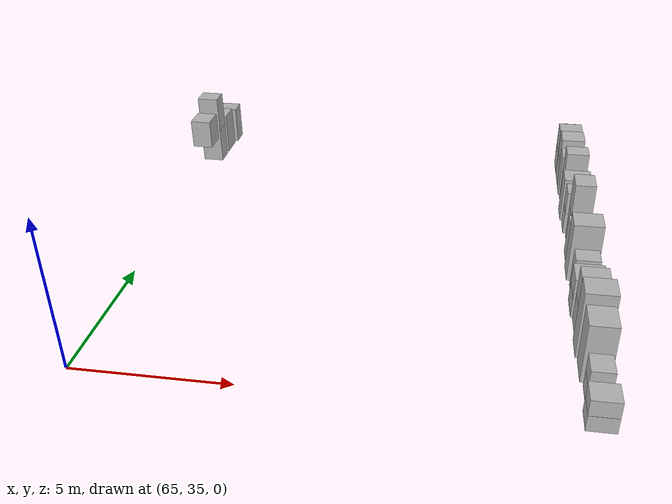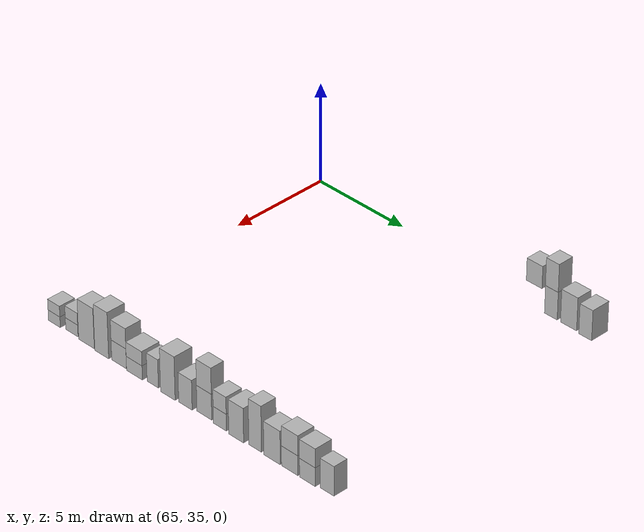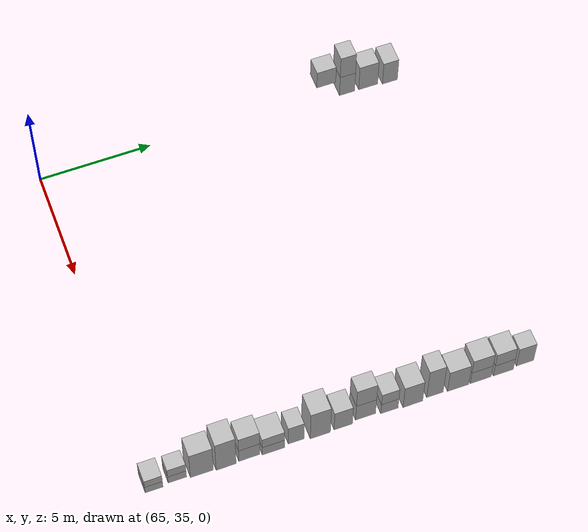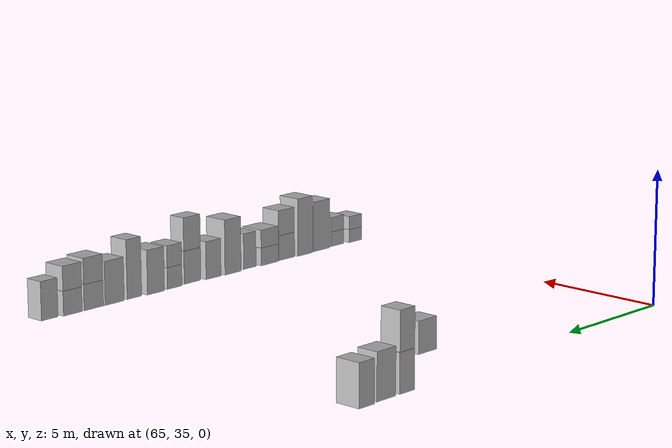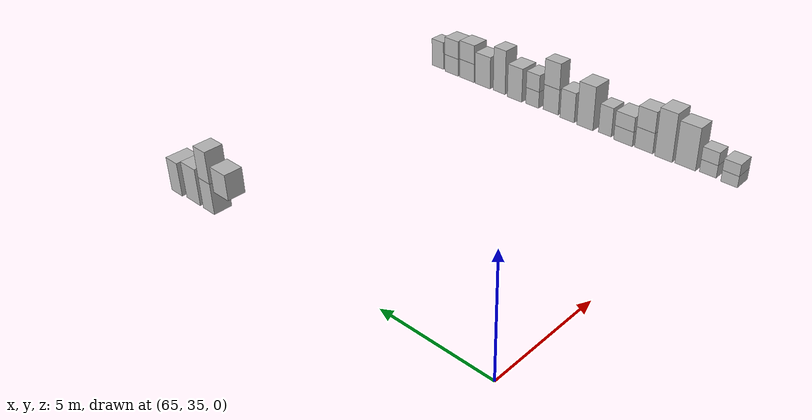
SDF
<sdf version="1.5">
 <world name="default">
  <model name="ground_plane">
   <static>true</static>
   <link name="link">
    <collision name="collision">
     <geometry><plane><normal>0 0 1</normal><size>250 250</size></plane></geometry>
     <surface><friction><ode><mu>1</mu><mu2>1</mu2></ode></friction></surface>
    </collision>
    <visual name="grass">
     <cast_shadows>false</cast_shadows>
     <geometry><mesh><uri>file://grass_plane/meshes/grass_plane.dae</uri></mesh></geometry>
    </visual>
   </link>
  </model>
  <model name="Cardboard_box_top_758">
   <link name="link_0">
    <pose>65 48 1.11567631458 0 0 0</pose>
    <inertial>
     <mass>1</mass>
     <inertia>
      <ixx>0.166667</ixx>
      <ixy>0</ixy>
      <ixz>0</ixz>
      <iyy>0.166667</iyy>
      <iyz>0</iyz>
      <izz>0.166667</izz>
     </inertia>
    </inertial>
    <collision name="collision">
     <geometry>
      <mesh>
       <uri>model://Cardboard_box/meshes/cardboard_box.dae</uri>
       <scale>1.96611906747 2.23167727122 2.78919078645</scale>
      </mesh>
     </geometry>
    </collision>
    <visual name="visual">
     <geometry>
      <mesh>
       <uri>model://Cardboard_box/meshes/cardboard_box.dae</uri>
       <scale>1.96611906747 2.23167727122 2.78919078645</scale>
      </mesh>
     </geometry>
    </visual>
   </link>
   <static>1</static>
  </model>
  <model name="Cardboard_box_759">
   <link name="link_0">
    <pose>65 49 0 0 0 0</pose>
    <inertial>
     <mass>1</mass>
     <inertia>
      <ixx>0.166667</ixx>
      <ixy>0</ixy>
      <ixz>0</ixz>
      <iyy>0.166667</iyy>
      <iyz>0</iyz>
      <izz>0.166667</izz>
     </inertia>
    </inertial>
    <collision name="collision">
     <geometry>
      <mesh>
       <uri>model://Cardboard_box/meshes/cardboard_box.dae</uri>
       <scale>2.03705187288 1.803535053 3.47696320242</scale>
      </mesh>
     </geometry>
    </collision>
    <visual name="visual">
     <geometry>
      <mesh>
       <uri>model://Cardboard_box/meshes/cardboard_box.dae</uri>
       <scale>2.03705187288 1.803535053 3.47696320242</scale>
      </mesh>
     </geometry>
    </visual>
   </link>
   <static>1</static>
  </model>
  <model name="Cardboard_box_top_759">
   <link name="link_0">
    <pose>65 49 1.39078528097 0 0 0</pose>
    <inertial>
     <mass>1</mass>
     <inertia>
      <ixx>0.166667</ixx>
      <ixy>0</ixy>
      <ixz>0</ixz>
      <iyy>0.166667</iyy>
      <iyz>0</iyz>
      <izz>0.166667</izz>
     </inertia>
    </inertial>
    <collision name="collision">
     <geometry>
      <mesh>
       <uri>model://Cardboard_box/meshes/cardboard_box.dae</uri>
       <scale>2.03705187288 1.803535053 3.47696320242</scale>
      </mesh>
     </geometry>
    </collision>
    <visual name="visual">
     <geometry>
      <mesh>
       <uri>model://Cardboard_box/meshes/cardboard_box.dae</uri>
       <scale>2.03705187288 1.803535053 3.47696320242</scale>
      </mesh>
     </geometry>
    </visual>
   </link>
   <static>1</static>
  </model>
  <model name="Cardboard_box_760">
   <link name="link_0">
    <pose>65 50 0 0 0 0</pose>
    <inertial>
     <mass>1</mass>
     <inertia>
      <ixx>0.166667</ixx>
      <ixy>0</ixy>
      <ixz>0</ixz>
      <iyy>0.166667</iyy>
      <iyz>0</iyz>
      <izz>0.166667</izz>
     </inertia>
    </inertial>
    <collision name="collision">
     <geometry>
      <mesh>
       <uri>model://Cardboard_box/meshes/cardboard_box.dae</uri>
       <scale>2.05504429465 2.26245942299 4.13785583534</scale>
      </mesh>
     </geometry>
    </collision>
    <visual name="visual">
     <geometry>
      <mesh>
       <uri>model://Cardboard_box/meshes/cardboard_box.dae</uri>
       <scale>2.05504429465 2.26245942299 4.13785583534</scale>
      </mesh>
     </geometry>
    </visual>
   </link>
   <static>1</static>
  </model>
  <model name="Cardboard_box_761">
   <link name="link_0">
    <pose>65 51 0 0 0 0</pose>
    <inertial>
     <mass>1</mass>
     <inertia>
      <ixx>0.166667</ixx>
      <ixy>0</ixy>
      <ixz>0</ixz>
      <iyy>0.166667</iyy>
      <iyz>0</iyz>
      <izz>0.166667</izz>
     </inertia>
    </inertial>
    <collision name="collision">
     <geometry>
      <mesh>
       <uri>model://Cardboard_box/meshes/cardboard_box.dae</uri>
       <scale>2.45562079697 1.79561571463 3.78028953093</scale>
      </mesh>
     </geometry>
    </collision>
    <visual name="visual">
     <geometry>
      <mesh>
       <uri>model://Cardboard_box/meshes/cardboard_box.dae</uri>
       <scale>2.45562079697 1.79561571463 3.78028953093</scale>
      </mesh>
     </geometry>
    </visual>
   </link>
   <static>1</static>
  </model>
  <model name="Cardboard_box_762">
   <link name="link_0">
    <pose>80 35 0 0 0 0</pose>
    <inertial>
     <mass>1</mass>
     <inertia>
      <ixx>0.166667</ixx>
      <ixy>0</ixy>
      <ixz>0</ixz>
      <iyy>0.166667</iyy>
      <iyz>0</iyz>
      <izz>0.166667</izz>
     </inertia>
    </inertial>
    <collision name="collision">
     <geometry>
      <mesh>
       <uri>model://Cardboard_box/meshes/cardboard_box.dae</uri>
       <scale>2.12002066274 1.8677851871 1.33983689175</scale>
      </mesh>
     </geometry>
    </collision>
    <visual name="visual">
     <geometry>
      <mesh>
       <uri>model://Cardboard_box/meshes/cardboard_box.dae</uri>
       <scale>2.12002066274 1.8677851871 1.33983689175</scale>
      </mesh>
     </geometry>
    </visual>
   </link>
   <static>1</static>
  </model>
  <model name="Cardboard_box_top_762">
   <link name="link_0">
    <pose>80 35 0.535934756702 0 0 0</pose>
    <inertial>
     <mass>1</mass>
     <inertia>
      <ixx>0.166667</ixx>
      <ixy>0</ixy>
      <ixz>0</ixz>
      <iyy>0.166667</iyy>
      <iyz>0</iyz>
      <izz>0.166667</izz>
     </inertia>
    </inertial>
    <collision name="collision">
     <geometry>
      <mesh>
       <uri>model://Cardboard_box/meshes/cardboard_box.dae</uri>
       <scale>2.12002066274 1.8677851871 1.33983689175</scale>
      </mesh>
     </geometry>
    </collision>
    <visual name="visual">
     <geometry>
      <mesh>
       <uri>model://Cardboard_box/meshes/cardboard_box.dae</uri>
       <scale>2.12002066274 1.8677851871 1.33983689175</scale>
      </mesh>
     </geometry>
    </visual>
   </link>
   <static>1</static>
  </model>
  <model name="Cardboard_box_763">
   <link name="link_0">
    <pose>80 36 0 0 0 0</pose>
    <inertial>
     <mass>1</mass>
     <inertia>
      <ixx>0.166667</ixx>
      <ixy>0</ixy>
      <ixz>0</ixz>
      <iyy>0.166667</iyy>
      <iyz>0</iyz>
      <izz>0.166667</izz>
     </inertia>
    </inertial>
    <collision name="collision">
     <geometry>
      <mesh>
       <uri>model://Cardboard_box/meshes/cardboard_box.dae</uri>
       <scale>1.70291779829 1.93341043569 1.48772502058</scale>
      </mesh>
     </geometry>
    </collision>
    <visual name="visual">
     <geometry>
      <mesh>
       <uri>model://Cardboard_box/meshes/cardboard_box.dae</uri>
       <scale>1.70291779829 1.93341043569 1.48772502058</scale>
      </mesh>
     </geometry>
    </visual>
   </link>
   <static>1</static>
  </model>
  <model name="Cardboard_box_top_763">
   <link name="link_0">
    <pose>80 36 0.595090008233 0 0 0</pose>
    <inertial>
     <mass>1</mass>
     <inertia>
      <ixx>0.166667</ixx>
      <ixy>0</ixy>
      <ixz>0</ixz>
      <iyy>0.166667</iyy>
      <iyz>0</iyz>
      <izz>0.166667</izz>
     </inertia>
    </inertial>
    <collision name="collision">
     <geometry>
      <mesh>
       <uri>model://Cardboard_box/meshes/cardboard_box.dae</uri>
       <scale>1.70291779829 1.93341043569 1.48772502058</scale>
      </mesh>
     </geometry>
    </collision>
    <visual name="visual">
     <geometry>
      <mesh>
       <uri>model://Cardboard_box/meshes/cardboard_box.dae</uri>
       <scale>1.70291779829 1.93341043569 1.48772502058</scale>
      </mesh>
     </geometry>
    </visual>
   </link>
   <static>1</static>
  </model>
  <model name="Cardboard_box_764">
   <link name="link_0">
    <pose>80 37 0 0 0 0</pose>
    <inertial>
     <mass>1</mass>
     <inertia>
      <ixx>0.166667</ixx>
      <ixy>0</ixy>
      <ixz>0</ixz>
      <iyy>0.166667</iyy>
      <iyz>0</iyz>
      <izz>0.166667</izz>
     </inertia>
    </inertial>
    <collision name="collision">
     <geometry>
      <mesh>
       <uri>model://Cardboard_box/meshes/cardboard_box.dae</uri>
       <scale>2.12785342611 2.43161252811 5.05117922751</scale>
      </mesh>
     </geometry>
    </collision>
    <visual name="visual">
     <geometry>
      <mesh>
       <uri>model://Cardboard_box/meshes/cardboard_box.dae</uri>
       <scale>2.12785342611 2.43161252811 5.05117922751</scale>
      </mesh>
     </geometry>
    </visual>
   </link>
   <static>1</static>
  </model>
  <model name="Cardboard_box_765">
   <link name="link_0">
    <pose>80 38 0 0 0 0</pose>
    <inertial>
     <mass>1</mass>
     <inertia>
      <ixx>0.166667</ixx>
      <ixy>0</ixy>
      <ixz>0</ixz>
      <iyy>0.166667</iyy>
      <iyz>0</iyz>
      <izz>0.166667</izz>
     </inertia>
    </inertial>
    <collision name="collision">
     <geometry>
      <mesh>
       <uri>model://Cardboard_box/meshes/cardboard_box.dae</uri>
       <scale>2.40701067189 2.12300870892 5.78956579213</scale>
      </mesh>
     </geometry>
    </collision>
    <visual name="visual">
     <geometry>
      <mesh>
       <uri>model://Cardboard_box/meshes/cardboard_box.dae</uri>
       <scale>2.40701067189 2.12300870892 5.78956579213</scale>
      </mesh>
     </geometry>
    </visual>
   </link>
   <static>1</static>
  </model>
  <model name="Cardboard_box_766">
   <link name="link_0">
    <pose>80 39 0 0 0 0</pose>
    <inertial>
     <mass>1</mass>
     <inertia>
      <ixx>0.166667</ixx>
      <ixy>0</ixy>
      <ixz>0</ixz>
      <iyy>0.166667</iyy>
      <iyz>0</iyz>
      <izz>0.166667</izz>
     </inertia>
    </inertial>
    <collision name="collision">
     <geometry>
      <mesh>
       <uri>model://Cardboard_box/meshes/cardboard_box.dae</uri>
       <scale>2.14849577605 2.24642067539 2.50114310502</scale>
      </mesh>
     </geometry>
    </collision>
    <visual name="visual">
     <geometry>
      <mesh>
       <uri>model://Cardboard_box/meshes/cardboard_box.dae</uri>
       <scale>2.14849577605 2.24642067539 2.50114310502</scale>
      </mesh>
     </geometry>
    </visual>
   </link>
   <static>1</static>
  </model>
  <model name="Cardboard_box_top_766">
   <link name="link_0">
    <pose>80 39 1.00045724201 0 0 0</pose>
    <inertial>
     <mass>1</mass>
     <inertia>
      <ixx>0.166667</ixx>
      <ixy>0</ixy>
      <ixz>0</ixz>
      <iyy>0.166667</iyy>
      <iyz>0</iyz>
      <izz>0.166667</izz>
     </inertia>
    </inertial>
    <collision name="collision">
     <geometry>
      <mesh>
       <uri>model://Cardboard_box/meshes/cardboard_box.dae</uri>
       <scale>2.14849577605 2.24642067539 2.50114310502</scale>
      </mesh>
     </geometry>
    </collision>
    <visual name="visual">
     <geometry>
      <mesh>
       <uri>model://Cardboard_box/meshes/cardboard_box.dae</uri>
       <scale>2.14849577605 2.24642067539 2.50114310502</scale>
      </mesh>
     </geometry>
    </visual>
   </link>
   <static>1</static>
  </model>
  <model name="Cardboard_box_767">
   <link name="link_0">
    <pose>80 40 0 0 0 0</pose>
    <inertial>
     <mass>1</mass>
     <inertia>
      <ixx>0.166667</ixx>
      <ixy>0</ixy>
      <ixz>0</ixz>
      <iyy>0.166667</iyy>
      <iyz>0</iyz>
      <izz>0.166667</izz>
     </inertia>
    </inertial>
    <collision name="collision">
     <geometry>
      <mesh>
       <uri>model://Cardboard_box/meshes/cardboard_box.dae</uri>
       <scale>2.46178309508 2.40269324587 1.76766196064</scale>
      </mesh>
     </geometry>
    </collision>
    <visual name="visual">
     <geometry>
      <mesh>
       <uri>model://Cardboard_box/meshes/cardboard_box.dae</uri>
       <scale>2.46178309508 2.40269324587 1.76766196064</scale>
      </mesh>
     </geometry>
    </visual>
   </link>
   <static>1</static>
  </model>
  <model name="Cardboard_box_top_767">
   <link name="link_0">
    <pose>80 40 0.707064784256 0 0 0</pose>
    <inertial>
     <mass>1</mass>
     <inertia>
      <ixx>0.166667</ixx>
      <ixy>0</ixy>
      <ixz>0</ixz>
      <iyy>0.166667</iyy>
      <iyz>0</iyz>
      <izz>0.166667</izz>
     </inertia>
    </inertial>
    <collision name="collision">
     <geometry>
      <mesh>
       <uri>model://Cardboard_box/meshes/cardboard_box.dae</uri>
       <scale>2.46178309508 2.40269324587 1.76766196064</scale>
      </mesh>
     </geometry>
    </collision>
    <visual name="visual">
     <geometry>
      <mesh>
       <uri>model://Cardboard_box/meshes/cardboard_box.dae</uri>
       <scale>2.46178309508 2.40269324587 1.76766196064</scale>
      </mesh>
     </geometry>
    </visual>
   </link>
   <static>1</static>
  </model>
  <model name="Cardboard_box_768">
   <link name="link_0">
    <pose>80 41 0 0 0 0</pose>
    <inertial>
     <mass>1</mass>
     <inertia>
      <ixx>0.166667</ixx>
      <ixy>0</ixy>
      <ixz>0</ixz>
      <iyy>0.166667</iyy>
      <iyz>0</iyz>
      <izz>0.166667</izz>
     </inertia>
    </inertial>
    <collision name="collision">
     <geometry>
      <mesh>
       <uri>model://Cardboard_box/meshes/cardboard_box.dae</uri>
       <scale>2.00675080577 1.70048814229 3.52990745762</scale>
      </mesh>
     </geometry>
    </collision>
    <visual name="visual">
     <geometry>
      <mesh>
       <uri>model://Cardboard_box/meshes/cardboard_box.dae</uri>
       <scale>2.00675080577 1.70048814229 3.52990745762</scale>
      </mesh>
     </geometry>
    </visual>
   </link>
   <static>1</static>
  </model>
  <model name="Cardboard_box_769">
   <link name="link_0">
    <pose>80 42 0 0 0 0</pose>
    <inertial>
     <mass>1</mass>
     <inertia>
      <ixx>0.166667</ixx>
      <ixy>0</ixy>
      <ixz>0</ixz>
      <iyy>0.166667</iyy>
      <iyz>0</iyz>
      <izz>0.166667</izz>
     </inertia>
    </inertial>
    <collision name="collision">
     <geometry>
      <mesh>
       <uri>model://Cardboard_box/meshes/cardboard_box.dae</uri>
       <scale>2.46976536577 2.17468894195 5.40284498406</scale>
      </mesh>
     </geometry>
    </collision>
    <visual name="visual">
     <geometry>
      <mesh>
       <uri>model://Cardboard_box/meshes/cardboard_box.dae</uri>
       <scale>2.46976536577 2.17468894195 5.40284498406</scale>
      </mesh>
     </geometry>
    </visual>
   </link>
   <static>1</static>
  </model>
  <model name="Cardboard_box_770">
   <link name="link_0">
    <pose>80 43 0 0 0 0</pose>
    <inertial>
     <mass>1</mass>
     <inertia>
      <ixx>0.166667</ixx>
      <ixy>0</ixy>
      <ixz>0</ixz>
      <iyy>0.166667</iyy>
      <iyz>0</iyz>
      <izz>0.166667</izz>
     </inertia>
    </inertial>
    <collision name="collision">
     <geometry>
      <mesh>
       <uri>model://Cardboard_box/meshes/cardboard_box.dae</uri>
       <scale>2.27779529926 1.9892248339 3.6882596632</scale>
      </mesh>
     </geometry>
    </collision>
    <visual name="visual">
     <geometry>
      <mesh>
       <uri>model://Cardboard_box/meshes/cardboard_box.dae</uri>
       <scale>2.27779529926 1.9892248339 3.6882596632</scale>
      </mesh>
     </geometry>
    </visual>
   </link>
   <static>1</static>
  </model>
  <model name="Cardboard_box_771">
   <link name="link_0">
    <pose>80 44 0 0 0 0</pose>
    <inertial>
     <mass>1</mass>
     <inertia>
      <ixx>0.166667</ixx>
      <ixy>0</ixy>
      <ixz>0</ixz>
      <iyy>0.166667</iyy>
      <iyz>0</iyz>
      <izz>0.166667</izz>
     </inertia>
    </inertial>
    <collision name="collision">
     <geometry>
      <mesh>
       <uri>model://Cardboard_box/meshes/cardboard_box.dae</uri>
       <scale>1.75760658772 2.18219427774 3.19802474057</scale>
      </mesh>
     </geometry>
    </collision>
    <visual name="visual">
     <geometry>
      <mesh>
       <uri>model://Cardboard_box/meshes/cardboard_box.dae</uri>
       <scale>1.75760658772 2.18219427774 3.19802474057</scale>
      </mesh>
     </geometry>
    </visual>
   </link>
   <static>1</static>
  </model>
  <model name="Cardboard_box_top_771">
   <link name="link_0">
    <pose>80 44 1.27920989623 0 0 0</pose>
    <inertial>
     <mass>1</mass>
     <inertia>
      <ixx>0.166667</ixx>
      <ixy>0</ixy>
      <ixz>0</ixz>
      <iyy>0.166667</iyy>
      <iyz>0</iyz>
      <izz>0.166667</izz>
     </inertia>
    </inertial>
    <collision name="collision">
     <geometry>
      <mesh>
       <uri>model://Cardboard_box/meshes/cardboard_box.dae</uri>
       <scale>1.75760658772 2.18219427774 3.19802474057</scale>
      </mesh>
     </geometry>
    </collision>
    <visual name="visual">
     <geometry>
      <mesh>
       <uri>model://Cardboard_box/meshes/cardboard_box.dae</uri>
       <scale>1.75760658772 2.18219427774 3.19802474057</scale>
      </mesh>
     </geometry>
    </visual>
   </link>
   <static>1</static>
  </model>
  <model name="Cardboard_box_772">
   <link name="link_0">
    <pose>80 45 0 0 0 0</pose>
    <inertial>
     <mass>1</mass>
     <inertia>
      <ixx>0.166667</ixx>
      <ixy>0</ixy>
      <ixz>0</ixz>
      <iyy>0.166667</iyy>
      <iyz>0</iyz>
      <izz>0.166667</izz>
     </inertia>
    </inertial>
    <collision name="collision">
     <geometry>
      <mesh>
       <uri>model://Cardboard_box/meshes/cardboard_box.dae</uri>
       <scale>2.19280713757 1.8924640273 2.08622946835</scale>
      </mesh>
     </geometry>
    </collision>
    <visual name="visual">
     <geometry>
      <mesh>
       <uri>model://Cardboard_box/meshes/cardboard_box.dae</uri>
       <scale>2.19280713757 1.8924640273 2.08622946835</scale>
      </mesh>
     </geometry>
    </visual>
   </link>
   <static>1</static>
  </model>
  <model name="Cardboard_box_top_772">
   <link name="link_0">
    <pose>80 45 0.83449178734 0 0 0</pose>
    <inertial>
     <mass>1</mass>
     <inertia>
      <ixx>0.166667</ixx>
      <ixy>0</ixy>
      <ixz>0</ixz>
      <iyy>0.166667</iyy>
      <iyz>0</iyz>
      <izz>0.166667</izz>
     </inertia>
    </inertial>
    <collision name="collision">
     <geometry>
      <mesh>
       <uri>model://Cardboard_box/meshes/cardboard_box.dae</uri>
       <scale>2.19280713757 1.8924640273 2.08622946835</scale>
      </mesh>
     </geometry>
    </collision>
    <visual name="visual">
     <geometry>
      <mesh>
       <uri>model://Cardboard_box/meshes/cardboard_box.dae</uri>
       <scale>2.19280713757 1.8924640273 2.08622946835</scale>
      </mesh>
     </geometry>
    </visual>
   </link>
   <static>1</static>
  </model>
  <model name="Cardboard_box_773">
   <link name="link_0">
    <pose>80 46 0 0 0 0</pose>
    <inertial>
     <mass>1</mass>
     <inertia>
      <ixx>0.166667</ixx>
      <ixy>0</ixy>
      <ixz>0</ixz>
      <iyy>0.166667</iyy>
      <iyz>0</iyz>
      <izz>0.166667</izz>
     </inertia>
    </inertial>
    <collision name="collision">
     <geometry>
      <mesh>
       <uri>model://Cardboard_box/meshes/cardboard_box.dae</uri>
       <scale>2.46781701323 2.15513674122 4.26704892434</scale>
      </mesh>
     </geometry>
    </collision>
    <visual name="visual">
     <geometry>
      <mesh>
       <uri>model://Cardboard_box/meshes/cardboard_box.dae</uri>
       <scale>2.46781701323 2.15513674122 4.26704892434</scale>
      </mesh>
     </geometry>
    </visual>
   </link>
   <static>1</static>
  </model>
  <model name="Cardboard_box_774">
   <link name="link_0">
    <pose>80 47 0 0 0 0</pose>
    <inertial>
     <mass>1</mass>
     <inertia>
      <ixx>0.166667</ixx>
      <ixy>0</ixy>
      <ixz>0</ixz>
      <iyy>0.166667</iyy>
      <iyz>0</iyz>
      <izz>0.166667</izz>
     </inertia>
    </inertial>
    <collision name="collision">
     <geometry>
      <mesh>
       <uri>model://Cardboard_box/meshes/cardboard_box.dae</uri>
       <scale>2.05252127202 1.81117671881 5.64900322198</scale>
      </mesh>
     </geometry>
    </collision>
    <visual name="visual">
     <geometry>
      <mesh>
       <uri>model://Cardboard_box/meshes/cardboard_box.dae</uri>
       <scale>2.05252127202 1.81117671881 5.64900322198</scale>
      </mesh>
     </geometry>
    </visual>
   </link>
   <static>1</static>
  </model>
  <model name="Cardboard_box_775">
   <link name="link_0">
    <pose>80 48 0 0 0 0</pose>
    <inertial>
     <mass>1</mass>
     <inertia>
      <ixx>0.166667</ixx>
      <ixy>0</ixy>
      <ixz>0</ixz>
      <iyy>0.166667</iyy>
      <iyz>0</iyz>
      <izz>0.166667</izz>
     </inertia>
    </inertial>
    <collision name="collision">
     <geometry>
      <mesh>
       <uri>model://Cardboard_box/meshes/cardboard_box.dae</uri>
       <scale>2.24247877016 2.34919118292 4.12193198697</scale>
      </mesh>
     </geometry>
    </collision>
    <visual name="visual">
     <geometry>
      <mesh>
       <uri>model://Cardboard_box/meshes/cardboard_box.dae</uri>
       <scale>2.24247877016 2.34919118292 4.12193198697</scale>
      </mesh>
     </geometry>
    </visual>
   </link>
   <static>1</static>
  </model>
  <model name="Cardboard_box_776">
   <link name="link_0">
    <pose>80 49 0 0 0 0</pose>
    <inertial>
     <mass>1</mass>
     <inertia>
      <ixx>0.166667</ixx>
      <ixy>0</ixy>
      <ixz>0</ixz>
      <iyy>0.166667</iyy>
      <iyz>0</iyz>
      <izz>0.166667</izz>
     </inertia>
    </inertial>
    <collision name="collision">
     <geometry>
      <mesh>
       <uri>model://Cardboard_box/meshes/cardboard_box.dae</uri>
       <scale>2.22049775931 2.33808179964 2.43258955914</scale>
      </mesh>
     </geometry>
    </collision>
    <visual name="visual">
     <geometry>
      <mesh>
       <uri>model://Cardboard_box/meshes/cardboard_box.dae</uri>
       <scale>2.22049775931 2.33808179964 2.43258955914</scale>
      </mesh>
     </geometry>
    </visual>
   </link>
   <static>1</static>
  </model>
  <model name="Cardboard_box_top_776">
   <link name="link_0">
    <pose>80 49 0.973035823656 0 0 0</pose>
    <inertial>
     <mass>1</mass>
     <inertia>
      <ixx>0.166667</ixx>
      <ixy>0</ixy>
      <ixz>0</ixz>
      <iyy>0.166667</iyy>
      <iyz>0</iyz>
      <izz>0.166667</izz>
     </inertia>
    </inertial>
    <collision name="collision">
     <geometry>
      <mesh>
       <uri>model://Cardboard_box/meshes/cardboard_box.dae</uri>
       <scale>2.22049775931 2.33808179964 2.43258955914</scale>
      </mesh>
     </geometry>
    </collision>
    <visual name="visual">
     <geometry>
      <mesh>
       <uri>model://Cardboard_box/meshes/cardboard_box.dae</uri>
       <scale>2.22049775931 2.33808179964 2.43258955914</scale>
      </mesh>
     </geometry>
    </visual>
   </link>
   <static>1</static>
  </model>
  <model name="Cardboard_box_777">
   <link name="link_0">
    <pose>80 50 0 0 0 0</pose>
    <inertial>
     <mass>1</mass>
     <inertia>
      <ixx>0.166667</ixx>
      <ixy>0</ixy>
      <ixz>0</ixz>
      <iyy>0.166667</iyy>
      <iyz>0</iyz>
      <izz>0.166667</izz>
     </inertia>
    </inertial>
    <collision name="collision">
     <geometry>
      <mesh>
       <uri>model://Cardboard_box/meshes/cardboard_box.dae</uri>
       <scale>2.25661552727 2.22343059598 2.29856771926</scale>
      </mesh>
     </geometry>
    </collision>
    <visual name="visual">
     <geometry>
      <mesh>
       <uri>model://Cardboard_box/meshes/cardboard_box.dae</uri>
       <scale>2.25661552727 2.22343059598 2.29856771926</scale>
      </mesh>
     </geometry>
    </visual>
   </link>
   <static>1</static>
  </model>
  <model name="Cardboard_box_top_777">
   <link name="link_0">
    <pose>80 50 0.919427087704 0 0 0</pose>
    <inertial>
     <mass>1</mass>
     <inertia>
      <ixx>0.166667</ixx>
      <ixy>0</ixy>
      <ixz>0</ixz>
      <iyy>0.166667</iyy>
      <iyz>0</iyz>
      <izz>0.166667</izz>
     </inertia>
    </inertial>
    <collision name="collision">
     <geometry>
      <mesh>
       <uri>model://Cardboard_box/meshes/cardboard_box.dae</uri>
       <scale>2.25661552727 2.22343059598 2.29856771926</scale>
      </mesh>
     </geometry>
    </collision>
    <visual name="visual">
     <geometry>
      <mesh>
       <uri>model://Cardboard_box/meshes/cardboard_box.dae</uri>
       <scale>2.25661552727 2.22343059598 2.29856771926</scale>
      </mesh>
     </geometry>
    </visual>
   </link>
   <static>1</static>
  </model>
  <model name="Cardboard_box_778">
   <link name="link_0">
    <pose>80 51 0 0 0 0</pose>
    <inertial>
     <mass>1</mass>
     <inertia>
      <ixx>0.166667</ixx>
      <ixy>0</ixy>
      <ixz>0</ixz>
      <iyy>0.166667</iyy>
      <iyz>0</iyz>
      <izz>0.166667</izz>
     </inertia>
    </inertial>
    <collision name="collision">
     <geometry>
      <mesh>
       <uri>model://Cardboard_box/meshes/cardboard_box.dae</uri>
       <scale>1.79032298041 1.93517264781 3.61316050545</scale>
      </mesh>
     </geometry>
    </collision>
    <visual name="visual">
     <geometry>
      <mesh>
       <uri>model://Cardboard_box/meshes/cardboard_box.dae</uri>
       <scale>1.79032298041 1.93517264781 3.61316050545</scale>
      </mesh>
     </geometry>
    </visual>
   </link>
   <static>1</static>
  </model>
 </world>
</sdf>
